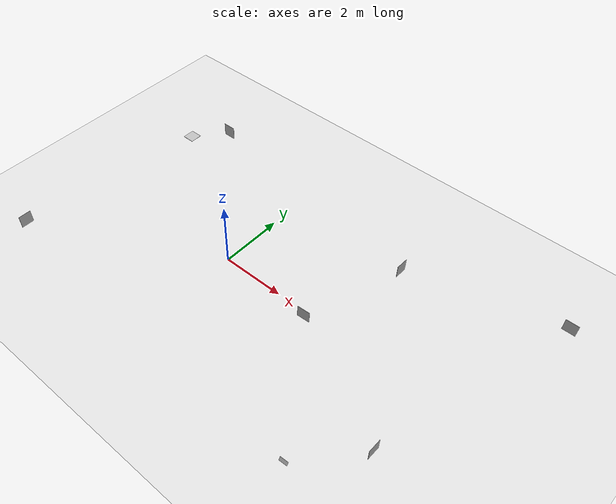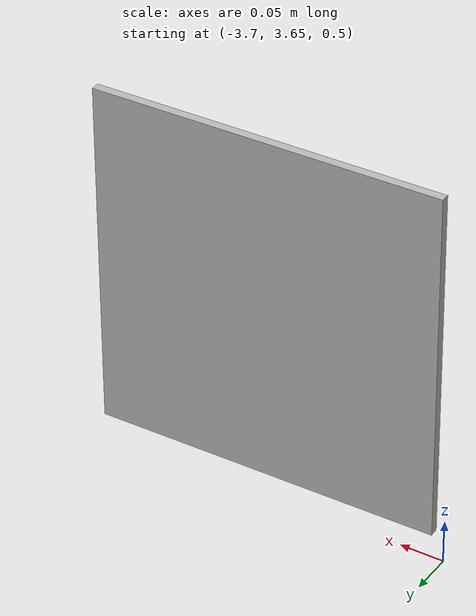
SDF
<sdf version="1.7">
 <world name="default">
  <light name="sun" type="directional">
   <pose>0 0 10 0 -0 0</pose>
   <diffuse>0.8 0.8 0.8 1</diffuse>
   <specular>0.2 0.2 0.2 1</specular>
   <attenuation>
    <range>1000</range>
    <constant>0.9</constant>
    <linear>0.01</linear>
    <quadratic>0.001</quadratic>
   </attenuation>
   <direction>-0.5 0.1 -0.9</direction>
   <spot><inner_angle>0</inner_angle><outer_angle>0</outer_angle><falloff>0</falloff></spot>
  </light>
  <model name="ground_plane">
   <static>1</static>
   <link name="link">
    <collision name="collision">
     <geometry><plane><normal>0 0 1</normal><size>100 100</size></plane></geometry>
     <surface>
      <contact><collide_bitmask>65535</collide_bitmask></contact>
      <friction><ode><mu>100</mu><mu2>50</mu2></ode></friction>
     </surface>
    </collision>
    <visual name="visual">
     <cast_shadows>0</cast_shadows>
     <geometry><plane><normal>0 0 1</normal><size>100 100</size></plane></geometry>
     <material>
      <script><uri>file://media/materials/scripts/gazebo.material</uri><name>Gazebo/Grey</name></script>
     </material>
    </visual>
   </link>
  </model>
  <gravity>0 0 -9.8</gravity>
  <magnetic_field>6e-06 2.3e-05 -4.2e-05</magnetic_field>
  <atmosphere type="adiabatic"/>
  <physics type="ode">
   <max_step_size>0.001</max_step_size>
   <real_time_factor>1</real_time_factor>
   <real_time_update_rate>1000</real_time_update_rate>
  </physics>
  <scene><ambient>0.4 0.4 0.4 1</ambient><background>0.7 0.7 0.7 1</background><shadows>1</shadows></scene>
  <spherical_coordinates>
   <surface_model>EARTH_WGS84</surface_model>
   <latitude_deg>0</latitude_deg>
   <longitude_deg>0</longitude_deg>
   <elevation>0</elevation>
   <heading_deg>0</heading_deg>
  </spherical_coordinates>
  <model name="Apriltag36_11_00000_clone_1">
   <link name="main">
    <visual name="main_Visual">
     <geometry><box><size>0.4 0.4 0.01</size></box></geometry>
     <material>
      <script>
       <uri>model://Apriltag36_11_00000/materials/scripts</uri>
       <uri>model://Apriltag36_11_00000/materials/textures</uri>
       <name>Apriltag36_11_00000</name>
      </script>
     </material>
    </visual>
   </link>
   <static>1</static>
   <pose>2.38791 -0.230537 -9.69285 -1.54159 1.39159 -2.99159</pose>
  </model>
  <model name="Apriltag36_11_00000_clone_0_clone">
   <link name="main">
    <visual name="main_Visual">
     <geometry><box><size>0.4 0.4 0.01</size></box></geometry>
     <material>
      <script>
       <uri>model://Apriltag36_11_00000/materials/scripts</uri>
       <uri>model://Apriltag36_11_00000/materials/textures</uri>
       <name>Apriltag36_11_00000</name>
      </script>
     </material>
    </visual>
   </link>
   <static>1</static>
   <pose>3.06328 -0.190174 0.2 -1.64161 1.54159 3.14158</pose>
  </model>
  <model name="Apriltag36_11_00001">
   <link name="main">
    <visual name="main_Visual">
     <geometry><box><size>0.4 0.4 0.01</size></box></geometry>
     <material>
      <script>
       <uri>model://Apriltag36_11_00001/materials/scripts</uri>
       <uri>model://Apriltag36_11_00001/materials/textures</uri>
       <name>Apriltag36_11_00001</name>
      </script>
     </material>
    </visual>
   </link>
   <static>1</static>
   <pose>6.99221 -2.24695 0.460561 -1.5698 3e-06 -1.57509</pose>
  </model>
  <model name="Apriltag36_11_00002">
   <link name="main">
    <visual name="main_Visual">
     <geometry><box><size>0.4 0.4 0.01</size></box></geometry>
     <material>
      <script>
       <uri>model://Apriltag36_11_00002/materials/scripts</uri>
       <uri>model://Apriltag36_11_00002/materials/textures</uri>
       <name>Apriltag36_11_00002</name>
      </script>
     </material>
    </visual>
   </link>
   <static>1</static>
   <pose>8.68244 4.19818 0.233722 1.57336 -0 0</pose>
  </model>
  <model name="Apriltag36_11_00003">
   <link name="main">
    <visual name="main_Visual">
     <geometry><box><size>0.4 0.4 0.01</size></box></geometry>
     <material>
      <script>
       <uri>model://Apriltag36_11_00003/materials/scripts</uri>
       <uri>model://Apriltag36_11_00003/materials/textures</uri>
       <name>Apriltag36_11_00003</name>
      </script>
     </material>
    </visual>
   </link>
   <static>1</static>
   <pose>-3.47949 3.63479 0.717218 1.56663 -0 0</pose>
  </model>
  <model name="Apriltag36_11_00004">
   <link name="main">
    <visual name="main_Visual">
     <geometry><box><size>0.4 0.4 0.01</size></box></geometry>
     <material>
      <script>
       <uri>model://Apriltag36_11_00004/materials/scripts</uri>
       <uri>model://Apriltag36_11_00004/materials/textures</uri>
       <name>Apriltag36_11_00004</name>
      </script>
     </material>
    </visual>
   </link>
   <static>1</static>
   <pose>4.18551 2.69675 0.488349 1.55257 0.043546 1.5673</pose>
  </model>
  <model name="Apriltag36_11_00006">
   <link name="main">
    <visual name="main_Visual">
     <geometry><box><size>0.4 0.4 0.01</size></box></geometry>
     <material>
      <script>
       <uri>model://Apriltag36_11_00006/materials/scripts</uri>
       <uri>model://Apriltag36_11_00006/materials/textures</uri>
       <name>Apriltag36_11_00006</name>
      </script>
     </material>
    </visual>
   </link>
   <static>1</static>
   <pose>-5.36764 -3.14245 0.404643 0 1.56844 0</pose>
  </model>
  <model name="Apriltag36_11_00002_0">
   <link name="main">
    <visual name="main_Visual">
     <geometry><box><size>0.4 0.4 0.01</size></box></geometry>
     <material>
      <script>
       <uri>model://Apriltag36_11_00002/materials/scripts</uri>
       <uri>model://Apriltag36_11_00002/materials/textures</uri>
       <name>Apriltag36_11_00002</name>
      </script>
     </material>
    </visual>
   </link>
   <static>1</static>
   <pose>-4.92849 3.21732 0 0 -0 0</pose>
  </model>
 </world>
</sdf>
